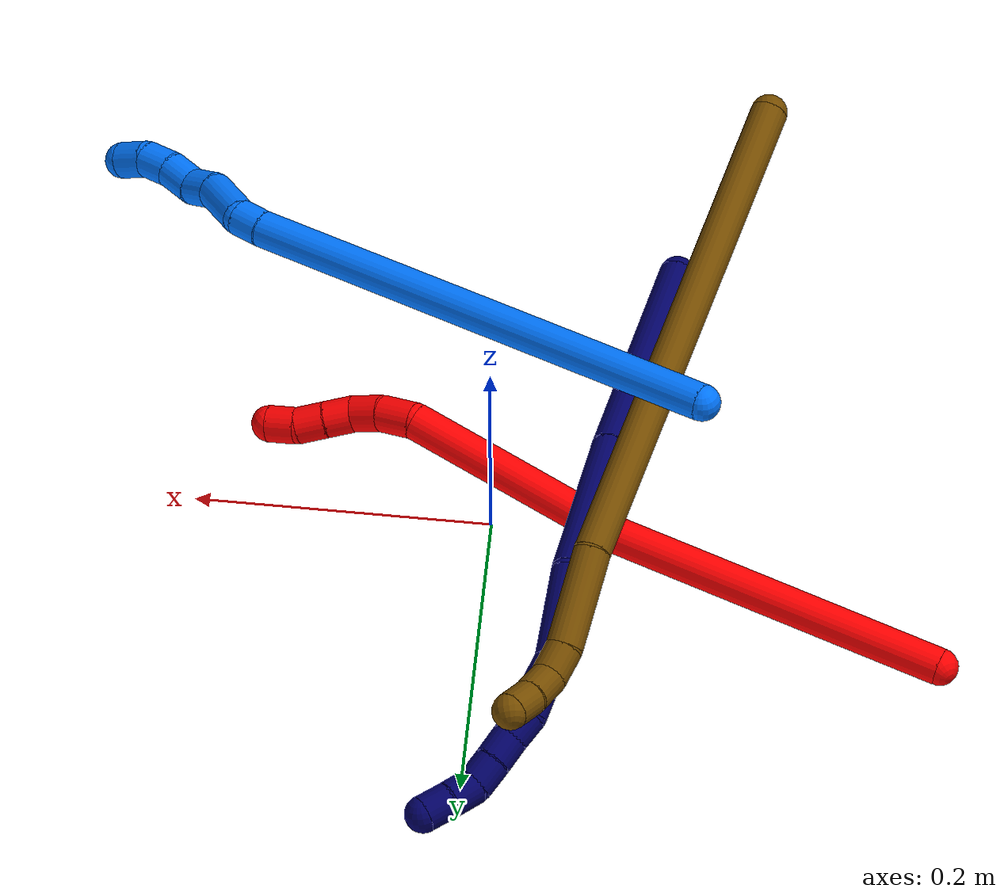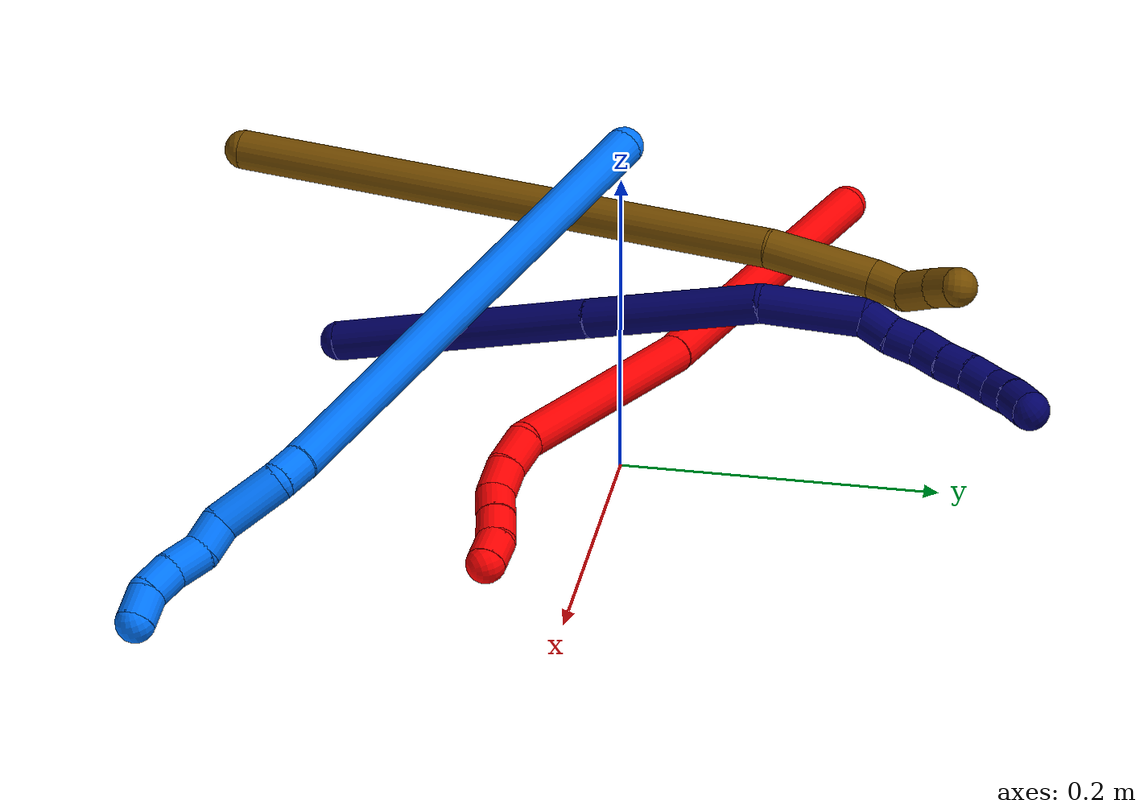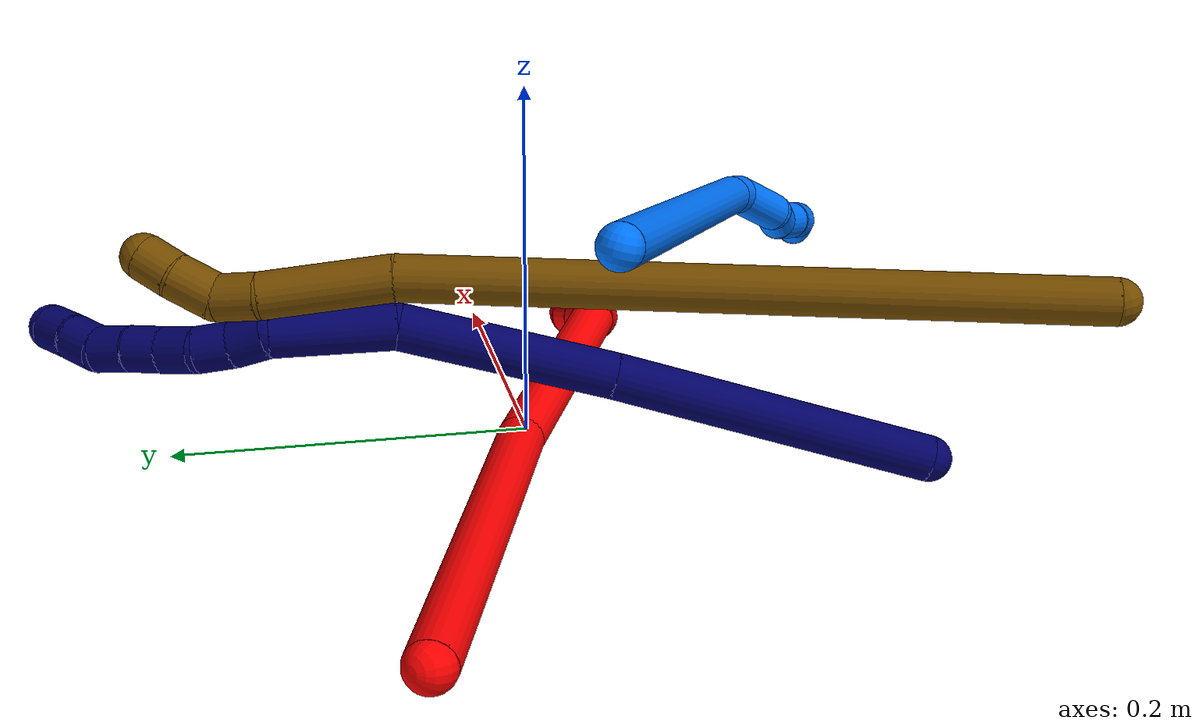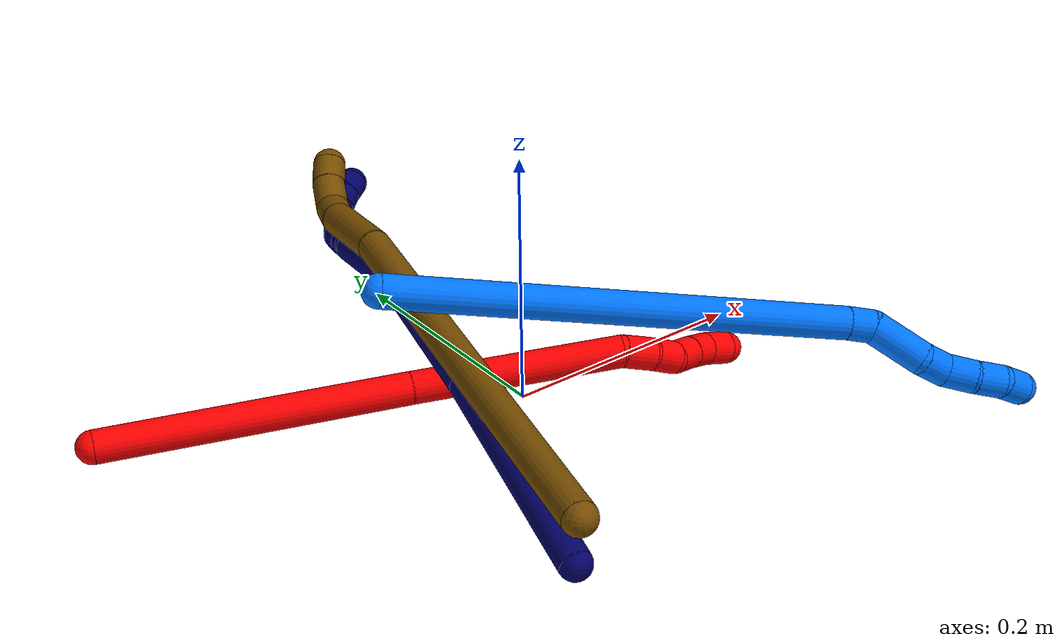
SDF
<sdf version="1.7">
 <world name="default">
  <model name="2">
   <static>0</static>
   <link name="2">
    <collision name="collision-cylinder-e_1_1_4">
     <pose>0.064358 -0.000493 -0.097035 3.13651 0.585625 3.12473</pose>
     <geometry><cylinder><radius>0.0125</radius><length>0.232877</length></cylinder></geometry>
     <surface>
      <friction><ode><mu>1.16</mu><mu2>1.16</mu2><slip1>0</slip1><slip2>0</slip2></ode></friction>
      <contact><ode><kp>1e+06</kp><kd>1</kd><max_vel>0</max_vel><min_depth>0.001</min_depth></ode></contact>
     </surface>
    </collision>
    <visual name="visual-cylinder-e_1_1_4">
     <pose>0.064358 -0.000493 -0.097035 3.13651 0.585625 3.12473</pose>
     <geometry><cylinder><radius>0.0125</radius><length>0.232877</length></cylinder></geometry>
     <material><ambient>1 0 0 1</ambient></material>
    </visual>
    <collision name="collision-cylinder-e_2_4_5">
     <pose>0.166416 -0.008139 -0.26428 3.04007 0.490627 2.74118</pose>
     <geometry><cylinder><radius>0.0125</radius><length>0.160025</length></cylinder></geometry>
     <surface>
      <friction><ode><mu>1.16</mu><mu2>1.16</mu2><slip1>0</slip1><slip2>0</slip2></ode></friction>
      <contact><ode><kp>1e+06</kp><kd>1</kd><max_vel>0</max_vel><min_depth>0.001</min_depth></ode></contact>
     </surface>
    </collision>
    <visual name="visual-cylinder-e_2_4_5">
     <pose>0.166416 -0.008139 -0.26428 3.04007 0.490627 2.74118</pose>
     <geometry><cylinder><radius>0.0125</radius><length>0.160025</length></cylinder></geometry>
     <material><ambient>1 0 0 1</ambient></material>
    </visual>
    <collision name="collision-cylinder-e_3_5_6">
     <pose>0.210035 -0.011639 -0.345047 -2.80855 0.487277 -1.95251</pose>
     <geometry><cylinder><radius>0.0125</radius><length>0.025285</length></cylinder></geometry>
     <surface>
      <friction><ode><mu>1.16</mu><mu2>1.16</mu2><slip1>0</slip1><slip2>0</slip2></ode></friction>
      <contact><ode><kp>1e+06</kp><kd>1</kd><max_vel>0</max_vel><min_depth>0.001</min_depth></ode></contact>
     </surface>
    </collision>
    <visual name="visual-cylinder-e_3_5_6">
     <pose>0.210035 -0.011639 -0.345047 -2.80855 0.487277 -1.95251</pose>
     <geometry><cylinder><radius>0.0125</radius><length>0.025285</length></cylinder></geometry>
     <material><ambient>1 0 0 1</ambient></material>
    </visual>
    <collision name="collision-cylinder-e_4_6_7">
     <pose>0.22175 -0.003165 -0.363404 -2.58779 0.563549 -1.58918</pose>
     <geometry><cylinder><radius>0.0125</radius><length>0.021695</length></cylinder></geometry>
     <surface>
      <friction><ode><mu>1.16</mu><mu2>1.16</mu2><slip1>0</slip1><slip2>0</slip2></ode></friction>
      <contact><ode><kp>1e+06</kp><kd>1</kd><max_vel>0</max_vel><min_depth>0.001</min_depth></ode></contact>
     </surface>
    </collision>
    <visual name="visual-cylinder-e_4_6_7">
     <pose>0.22175 -0.003165 -0.363404 -2.58779 0.563549 -1.58918</pose>
     <geometry><cylinder><radius>0.0125</radius><length>0.021695</length></cylinder></geometry>
     <material><ambient>1 0 0 1</ambient></material>
    </visual>
    <collision name="collision-cylinder-e_5_7_8">
     <pose>0.235775 0.005075 -0.375769 -2.4992 0.964901 -2.00966</pose>
     <geometry><cylinder><radius>0.0125</radius><length>0.020028</length></cylinder></geometry>
     <surface>
      <friction><ode><mu>1.16</mu><mu2>1.16</mu2><slip1>0</slip1><slip2>0</slip2></ode></friction>
      <contact><ode><kp>1e+06</kp><kd>1</kd><max_vel>0</max_vel><min_depth>0.001</min_depth></ode></contact>
     </surface>
    </collision>
    <visual name="visual-cylinder-e_5_7_8">
     <pose>0.235775 0.005075 -0.375769 -2.4992 0.964901 -2.00966</pose>
     <geometry><cylinder><radius>0.0125</radius><length>0.020028</length></cylinder></geometry>
     <material><ambient>1 0 0 1</ambient></material>
    </visual>
    <collision name="collision-cylinder-e_6_8_9">
     <pose>0.251866 0.012393 -0.385178 -2.46342 0.90145 -1.88199</pose>
     <geometry><cylinder><radius>0.0125</radius><length>0.020044</length></cylinder></geometry>
     <surface>
      <friction><ode><mu>1.16</mu><mu2>1.16</mu2><slip1>0</slip1><slip2>0</slip2></ode></friction>
      <contact><ode><kp>1e+06</kp><kd>1</kd><max_vel>0</max_vel><min_depth>0.001</min_depth></ode></contact>
     </surface>
    </collision>
    <visual name="visual-cylinder-e_6_8_9">
     <pose>0.251866 0.012393 -0.385178 -2.46342 0.90145 -1.88199</pose>
     <geometry><cylinder><radius>0.0125</radius><length>0.020044</length></cylinder></geometry>
     <material><ambient>1 0 0 1</ambient></material>
    </visual>
    <collision name="collision-cylinder-e_7_9_2">
     <pose>0.266015 0.01917 -0.397276 -2.76419 0.678316 -2.14927</pose>
     <geometry><cylinder><radius>0.0125</radius><length>0.020048</length></cylinder></geometry>
     <surface>
      <friction><ode><mu>1.16</mu><mu2>1.16</mu2><slip1>0</slip1><slip2>0</slip2></ode></friction>
      <contact><ode><kp>1e+06</kp><kd>1</kd><max_vel>0</max_vel><min_depth>0.001</min_depth></ode></contact>
     </surface>
    </collision>
    <visual name="visual-cylinder-e_7_9_2">
     <pose>0.266015 0.01917 -0.397276 -2.76419 0.678316 -2.14927</pose>
     <geometry><cylinder><radius>0.0125</radius><length>0.020048</length></cylinder></geometry>
     <material><ambient>1 0 0 1</ambient></material>
    </visual>
    <collision name="collision-sphere-2">
     <pose>0.272305 0.022046 -0.404531 0 -0 0</pose>
     <geometry><sphere><radius>0.0125</radius></sphere></geometry>
     <surface>
      <friction><ode><mu>1.16</mu><mu2>1.16</mu2><slip1>0</slip1><slip2>0</slip2></ode></friction>
      <contact><ode><kp>1e+06</kp><kd>1</kd><max_vel>0</max_vel><min_depth>0.001</min_depth></ode></contact>
     </surface>
    </collision>
    <visual name="visual-sphere-2">
     <pose>0.272305 0.022046 -0.404531 0 -0 0</pose>
     <geometry><sphere><radius>0.0125</radius></sphere></geometry>
     <material><ambient>1 0 0 1</ambient></material>
    </visual>
    <collision name="collision-sphere-9">
     <pose>0.259725 0.016294 -0.39002 0 -0 0</pose>
     <geometry><sphere><radius>0.0125</radius></sphere></geometry>
     <surface>
      <friction><ode><mu>1.16</mu><mu2>1.16</mu2><slip1>0</slip1><slip2>0</slip2></ode></friction>
      <contact><ode><kp>1e+06</kp><kd>1</kd><max_vel>0</max_vel><min_depth>0.001</min_depth></ode></contact>
     </surface>
    </collision>
    <visual name="visual-sphere-9">
     <pose>0.259725 0.016294 -0.39002 0 -0 0</pose>
     <geometry><sphere><radius>0.0125</radius></sphere></geometry>
     <material><ambient>1 0 0 1</ambient></material>
    </visual>
    <collision name="collision-sphere-4">
     <pose>0.128716 -0.000987 -0.194069 0 -0 0</pose>
     <geometry><sphere><radius>0.0125</radius></sphere></geometry>
     <surface>
      <friction><ode><mu>1.16</mu><mu2>1.16</mu2><slip1>0</slip1><slip2>0</slip2></ode></friction>
      <contact><ode><kp>1e+06</kp><kd>1</kd><max_vel>0</max_vel><min_depth>0.001</min_depth></ode></contact>
     </surface>
    </collision>
    <visual name="visual-sphere-4">
     <pose>0.128716 -0.000987 -0.194069 0 -0 0</pose>
     <geometry><sphere><radius>0.0125</radius></sphere></geometry>
     <material><ambient>1 0 0 1</ambient></material>
    </visual>
    <collision name="collision-sphere-1">
     <geometry><sphere><radius>0.0125</radius></sphere></geometry>
     <surface>
      <friction><ode><mu>1.16</mu><mu2>1.16</mu2><slip1>0</slip1><slip2>0</slip2></ode></friction>
      <contact><ode><kp>1e+06</kp><kd>1</kd><max_vel>0</max_vel><min_depth>0.001</min_depth></ode></contact>
     </surface>
    </collision>
    <visual name="visual-sphere-1">
     <geometry><sphere><radius>0.0125</radius></sphere></geometry>
     <material><ambient>1 0 0 1</ambient></material>
    </visual>
    <collision name="collision-sphere-8">
     <pose>0.244007 0.008492 -0.380335 0 -0 0</pose>
     <geometry><sphere><radius>0.0125</radius></sphere></geometry>
     <surface>
      <friction><ode><mu>1.16</mu><mu2>1.16</mu2><slip1>0</slip1><slip2>0</slip2></ode></friction>
      <contact><ode><kp>1e+06</kp><kd>1</kd><max_vel>0</max_vel><min_depth>0.001</min_depth></ode></contact>
     </surface>
    </collision>
    <visual name="visual-sphere-8">
     <pose>0.244007 0.008492 -0.380335 0 -0 0</pose>
     <geometry><sphere><radius>0.0125</radius></sphere></geometry>
     <material><ambient>1 0 0 1</ambient></material>
    </visual>
    <collision name="collision-sphere-5">
     <pose>0.204116 -0.015291 -0.33449 0 -0 0</pose>
     <geometry><sphere><radius>0.0125</radius></sphere></geometry>
     <surface>
      <friction><ode><mu>1.16</mu><mu2>1.16</mu2><slip1>0</slip1><slip2>0</slip2></ode></friction>
      <contact><ode><kp>1e+06</kp><kd>1</kd><max_vel>0</max_vel><min_depth>0.001</min_depth></ode></contact>
     </surface>
    </collision>
    <visual name="visual-sphere-5">
     <pose>0.204116 -0.015291 -0.33449 0 -0 0</pose>
     <geometry><sphere><radius>0.0125</radius></sphere></geometry>
     <material><ambient>1 0 0 1</ambient></material>
    </visual>
    <collision name="collision-sphere-6">
     <pose>0.215955 -0.007987 -0.355604 0 -0 0</pose>
     <geometry><sphere><radius>0.0125</radius></sphere></geometry>
     <surface>
      <friction><ode><mu>1.16</mu><mu2>1.16</mu2><slip1>0</slip1><slip2>0</slip2></ode></friction>
      <contact><ode><kp>1e+06</kp><kd>1</kd><max_vel>0</max_vel><min_depth>0.001</min_depth></ode></contact>
     </surface>
    </collision>
    <visual name="visual-sphere-6">
     <pose>0.215955 -0.007987 -0.355604 0 -0 0</pose>
     <geometry><sphere><radius>0.0125</radius></sphere></geometry>
     <material><ambient>1 0 0 1</ambient></material>
    </visual>
    <collision name="collision-sphere-7">
     <pose>0.227544 0.001658 -0.371203 0 -0 0</pose>
     <geometry><sphere><radius>0.0125</radius></sphere></geometry>
     <surface>
      <friction><ode><mu>1.16</mu><mu2>1.16</mu2><slip1>0</slip1><slip2>0</slip2></ode></friction>
      <contact><ode><kp>1e+06</kp><kd>1</kd><max_vel>0</max_vel><min_depth>0.001</min_depth></ode></contact>
     </surface>
    </collision>
    <visual name="visual-sphere-7">
     <pose>0.227544 0.001658 -0.371203 0 -0 0</pose>
     <geometry><sphere><radius>0.0125</radius></sphere></geometry>
     <material><ambient>1 0 0 1</ambient></material>
    </visual>
    <inertial>
     <pose>0.133686 -0.002092 -0.209415 0 -0 0</pose>
     <mass>0.5</mass>
     <inertia>
      <ixx>-0.001019</ixx>
      <ixy>0</ixy>
      <ixz>0</ixz>
      <iyy>0.001522</iyy>
      <iyz>0</iyz>
      <izz>-0.000755</izz>
     </inertia>
    </inertial>
   </link>
   <pose>-0.307984 0.094866 0.032293 -1.42741 -0.213587 0.637393</pose>
  </model>
  <model name="7">
   <static>0</static>
   <link name="7">
    <collision name="collision-cylinder-e_1_1_4">
     <pose>0.021059 0.084745 0.011224 -1.43912 0.241534 -0.211893</pose>
     <geometry><cylinder><radius>0.0125</radius><length>0.176082</length></cylinder></geometry>
     <surface>
      <friction><ode><mu>1.16</mu><mu2>1.16</mu2><slip1>0</slip1><slip2>0</slip2></ode></friction>
      <contact><ode><kp>1e+06</kp><kd>1</kd><max_vel>0</max_vel><min_depth>0.001</min_depth></ode></contact>
     </surface>
    </collision>
    <visual name="visual-cylinder-e_1_1_4">
     <pose>0.021059 0.084745 0.011224 -1.43912 0.241534 -0.211893</pose>
     <geometry><cylinder><radius>0.0125</radius><length>0.176082</length></cylinder></geometry>
     <material><ambient>0.003922 0 0.403922 1</ambient></material>
    </visual>
    <collision name="collision-cylinder-e_2_4_5">
     <pose>0.057793 0.225178 0.031734 -1.40555 0.27083 -0.229799</pose>
     <geometry><cylinder><radius>0.0125</radius><length>0.117184</length></cylinder></geometry>
     <surface>
      <friction><ode><mu>1.16</mu><mu2>1.16</mu2><slip1>0</slip1><slip2>0</slip2></ode></friction>
      <contact><ode><kp>1e+06</kp><kd>1</kd><max_vel>0</max_vel><min_depth>0.001</min_depth></ode></contact>
     </surface>
    </collision>
    <visual name="visual-cylinder-e_2_4_5">
     <pose>0.057793 0.225178 0.031734 -1.40555 0.27083 -0.229799</pose>
     <geometry><cylinder><radius>0.0125</radius><length>0.117184</length></cylinder></geometry>
     <material><ambient>0.003922 0 0.403922 1</ambient></material>
    </visual>
    <collision name="collision-cylinder-e_3_5_6">
     <pose>0.081191 0.309659 0.055363 -1.1087 0.235618 -0.14629</pose>
     <geometry><cylinder><radius>0.0125</radius><length>0.066164</length></cylinder></geometry>
     <surface>
      <friction><ode><mu>1.16</mu><mu2>1.16</mu2><slip1>0</slip1><slip2>0</slip2></ode></friction>
      <contact><ode><kp>1e+06</kp><kd>1</kd><max_vel>0</max_vel><min_depth>0.001</min_depth></ode></contact>
     </surface>
    </collision>
    <visual name="visual-cylinder-e_3_5_6">
     <pose>0.081191 0.309659 0.055363 -1.1087 0.235618 -0.14629</pose>
     <geometry><cylinder><radius>0.0125</radius><length>0.066164</length></cylinder></geometry>
     <material><ambient>0.003922 0 0.403922 1</ambient></material>
    </visual>
    <collision name="collision-cylinder-e_4_6_7">
     <pose>0.087053 0.346582 0.075708 -0.934641 -0.182016 0.092034</pose>
     <geometry><cylinder><radius>0.0125</radius><length>0.020553</length></cylinder></geometry>
     <surface>
      <friction><ode><mu>1.16</mu><mu2>1.16</mu2><slip1>0</slip1><slip2>0</slip2></ode></friction>
      <contact><ode><kp>1e+06</kp><kd>1</kd><max_vel>0</max_vel><min_depth>0.001</min_depth></ode></contact>
     </surface>
    </collision>
    <visual name="visual-cylinder-e_4_6_7">
     <pose>0.087053 0.346582 0.075708 -0.934641 -0.182016 0.092034</pose>
     <geometry><cylinder><radius>0.0125</radius><length>0.020553</length></cylinder></geometry>
     <material><ambient>0.003922 0 0.403922 1</ambient></material>
    </visual>
    <collision name="collision-cylinder-e_5_7_8">
     <pose>0.085024 0.363335 0.086783 -1.03923 -0.016906 0.009671</pose>
     <geometry><cylinder><radius>0.0125</radius><length>0.020008</length></cylinder></geometry>
     <surface>
      <friction><ode><mu>1.16</mu><mu2>1.16</mu2><slip1>0</slip1><slip2>0</slip2></ode></friction>
      <contact><ode><kp>1e+06</kp><kd>1</kd><max_vel>0</max_vel><min_depth>0.001</min_depth></ode></contact>
     </surface>
    </collision>
    <visual name="visual-cylinder-e_5_7_8">
     <pose>0.085024 0.363335 0.086783 -1.03923 -0.016906 0.009671</pose>
     <geometry><cylinder><radius>0.0125</radius><length>0.020008</length></cylinder></geometry>
     <material><ambient>0.003922 0 0.403922 1</ambient></material>
    </visual>
    <collision name="collision-cylinder-e_6_8_9">
     <pose>0.082183 0.380916 0.095413 -1.19256 -0.270331 0.184075</pose>
     <geometry><cylinder><radius>0.0125</radius><length>0.020007</length></cylinder></geometry>
     <surface>
      <friction><ode><mu>1.16</mu><mu2>1.16</mu2><slip1>0</slip1><slip2>0</slip2></ode></friction>
      <contact><ode><kp>1e+06</kp><kd>1</kd><max_vel>0</max_vel><min_depth>0.001</min_depth></ode></contact>
     </surface>
    </collision>
    <visual name="visual-cylinder-e_6_8_9">
     <pose>0.082183 0.380916 0.095413 -1.19256 -0.270331 0.184075</pose>
     <geometry><cylinder><radius>0.0125</radius><length>0.020007</length></cylinder></geometry>
     <material><ambient>0.003922 0 0.403922 1</ambient></material>
    </visual>
    <collision name="collision-cylinder-e_7_9_10">
     <pose>0.077743 0.399128 0.10233 -1.2228 -0.1778 0.124806</pose>
     <geometry><cylinder><radius>0.0125</radius><length>0.020002</length></cylinder></geometry>
     <surface>
      <friction><ode><mu>1.16</mu><mu2>1.16</mu2><slip1>0</slip1><slip2>0</slip2></ode></friction>
      <contact><ode><kp>1e+06</kp><kd>1</kd><max_vel>0</max_vel><min_depth>0.001</min_depth></ode></contact>
     </surface>
    </collision>
    <visual name="visual-cylinder-e_7_9_10">
     <pose>0.077743 0.399128 0.10233 -1.2228 -0.1778 0.124806</pose>
     <geometry><cylinder><radius>0.0125</radius><length>0.020002</length></cylinder></geometry>
     <material><ambient>0.003922 0 0.403922 1</ambient></material>
    </visual>
    <collision name="collision-cylinder-e_8_10_11">
     <pose>0.073455 0.417309 0.109422 -1.17446 -0.254626 0.169978</pose>
     <geometry><cylinder><radius>0.0125</radius><length>0.020001</length></cylinder></geometry>
     <surface>
      <friction><ode><mu>1.16</mu><mu2>1.16</mu2><slip1>0</slip1><slip2>0</slip2></ode></friction>
      <contact><ode><kp>1e+06</kp><kd>1</kd><max_vel>0</max_vel><min_depth>0.001</min_depth></ode></contact>
     </surface>
    </collision>
    <visual name="visual-cylinder-e_8_10_11">
     <pose>0.073455 0.417309 0.109422 -1.17446 -0.254626 0.169978</pose>
     <geometry><cylinder><radius>0.0125</radius><length>0.020001</length></cylinder></geometry>
     <material><ambient>0.003922 0 0.403922 1</ambient></material>
    </visual>
    <collision name="collision-cylinder-e_9_11_12">
     <pose>0.067027 0.435441 0.113186 -1.56784 -0.401641 0.400487</pose>
     <geometry><cylinder><radius>0.0125</radius><length>0.02</length></cylinder></geometry>
     <surface>
      <friction><ode><mu>1.16</mu><mu2>1.16</mu2><slip1>0</slip1><slip2>0</slip2></ode></friction>
      <contact><ode><kp>1e+06</kp><kd>1</kd><max_vel>0</max_vel><min_depth>0.001</min_depth></ode></contact>
     </surface>
    </collision>
    <visual name="visual-cylinder-e_9_11_12">
     <pose>0.067027 0.435441 0.113186 -1.56784 -0.401641 0.400487</pose>
     <geometry><cylinder><radius>0.0125</radius><length>0.02</length></cylinder></geometry>
     <material><ambient>0.003922 0 0.403922 1</ambient></material>
    </visual>
    <collision name="collision-cylinder-e_10_12_2">
     <pose>0.058235 0.453358 0.113707 -1.51416 -0.510068 0.483077</pose>
     <geometry><cylinder><radius>0.0125</radius><length>0.02</length></cylinder></geometry>
     <surface>
      <friction><ode><mu>1.16</mu><mu2>1.16</mu2><slip1>0</slip1><slip2>0</slip2></ode></friction>
      <contact><ode><kp>1e+06</kp><kd>1</kd><max_vel>0</max_vel><min_depth>0.001</min_depth></ode></contact>
     </surface>
    </collision>
    <visual name="visual-cylinder-e_10_12_2">
     <pose>0.058235 0.453358 0.113707 -1.51416 -0.510068 0.483077</pose>
     <geometry><cylinder><radius>0.0125</radius><length>0.02</length></cylinder></geometry>
     <material><ambient>0.003922 0 0.403922 1</ambient></material>
    </visual>
    <collision name="collision-sphere-2">
     <pose>0.053353 0.462071 0.114201 0 -0 0</pose>
     <geometry><sphere><radius>0.0125</radius></sphere></geometry>
     <surface>
      <friction><ode><mu>1.16</mu><mu2>1.16</mu2><slip1>0</slip1><slip2>0</slip2></ode></friction>
      <contact><ode><kp>1e+06</kp><kd>1</kd><max_vel>0</max_vel><min_depth>0.001</min_depth></ode></contact>
     </surface>
    </collision>
    <visual name="visual-sphere-2">
     <pose>0.053353 0.462071 0.114201 0 -0 0</pose>
     <geometry><sphere><radius>0.0125</radius></sphere></geometry>
     <material><ambient>0.003922 0 0.403922 1</ambient></material>
    </visual>
    <collision name="collision-sphere-12">
     <pose>0.063118 0.444645 0.113213 0 -0 0</pose>
     <geometry><sphere><radius>0.0125</radius></sphere></geometry>
     <surface>
      <friction><ode><mu>1.16</mu><mu2>1.16</mu2><slip1>0</slip1><slip2>0</slip2></ode></friction>
      <contact><ode><kp>1e+06</kp><kd>1</kd><max_vel>0</max_vel><min_depth>0.001</min_depth></ode></contact>
     </surface>
    </collision>
    <visual name="visual-sphere-12">
     <pose>0.063118 0.444645 0.113213 0 -0 0</pose>
     <geometry><sphere><radius>0.0125</radius></sphere></geometry>
     <material><ambient>0.003922 0 0.403922 1</ambient></material>
    </visual>
    <collision name="collision-sphere-11">
     <pose>0.070936 0.426236 0.113158 0 -0 0</pose>
     <geometry><sphere><radius>0.0125</radius></sphere></geometry>
     <surface>
      <friction><ode><mu>1.16</mu><mu2>1.16</mu2><slip1>0</slip1><slip2>0</slip2></ode></friction>
      <contact><ode><kp>1e+06</kp><kd>1</kd><max_vel>0</max_vel><min_depth>0.001</min_depth></ode></contact>
     </surface>
    </collision>
    <visual name="visual-sphere-11">
     <pose>0.070936 0.426236 0.113158 0 -0 0</pose>
     <geometry><sphere><radius>0.0125</radius></sphere></geometry>
     <material><ambient>0.003922 0 0.403922 1</ambient></material>
    </visual>
    <collision name="collision-sphere-10">
     <pose>0.075974 0.408381 0.105686 0 -0 0</pose>
     <geometry><sphere><radius>0.0125</radius></sphere></geometry>
     <surface>
      <friction><ode><mu>1.16</mu><mu2>1.16</mu2><slip1>0</slip1><slip2>0</slip2></ode></friction>
      <contact><ode><kp>1e+06</kp><kd>1</kd><max_vel>0</max_vel><min_depth>0.001</min_depth></ode></contact>
     </surface>
    </collision>
    <visual name="visual-sphere-10">
     <pose>0.075974 0.408381 0.105686 0 -0 0</pose>
     <geometry><sphere><radius>0.0125</radius></sphere></geometry>
     <material><ambient>0.003922 0 0.403922 1</ambient></material>
    </visual>
    <collision name="collision-sphere-9">
     <pose>0.079512 0.389874 0.098973 0 -0 0</pose>
     <geometry><sphere><radius>0.0125</radius></sphere></geometry>
     <surface>
      <friction><ode><mu>1.16</mu><mu2>1.16</mu2><slip1>0</slip1><slip2>0</slip2></ode></friction>
      <contact><ode><kp>1e+06</kp><kd>1</kd><max_vel>0</max_vel><min_depth>0.001</min_depth></ode></contact>
     </surface>
    </collision>
    <visual name="visual-sphere-9">
     <pose>0.079512 0.389874 0.098973 0 -0 0</pose>
     <geometry><sphere><radius>0.0125</radius></sphere></geometry>
     <material><ambient>0.003922 0 0.403922 1</ambient></material>
    </visual>
    <collision name="collision-sphere-4">
     <pose>0.042117 0.169491 0.022447 0 -0 0</pose>
     <geometry><sphere><radius>0.0125</radius></sphere></geometry>
     <surface>
      <friction><ode><mu>1.16</mu><mu2>1.16</mu2><slip1>0</slip1><slip2>0</slip2></ode></friction>
      <contact><ode><kp>1e+06</kp><kd>1</kd><max_vel>0</max_vel><min_depth>0.001</min_depth></ode></contact>
     </surface>
    </collision>
    <visual name="visual-sphere-4">
     <pose>0.042117 0.169491 0.022447 0 -0 0</pose>
     <geometry><sphere><radius>0.0125</radius></sphere></geometry>
     <material><ambient>0.003922 0 0.403922 1</ambient></material>
    </visual>
    <collision name="collision-sphere-1">
     <geometry><sphere><radius>0.0125</radius></sphere></geometry>
     <surface>
      <friction><ode><mu>1.16</mu><mu2>1.16</mu2><slip1>0</slip1><slip2>0</slip2></ode></friction>
      <contact><ode><kp>1e+06</kp><kd>1</kd><max_vel>0</max_vel><min_depth>0.001</min_depth></ode></contact>
     </surface>
    </collision>
    <visual name="visual-sphere-1">
     <geometry><sphere><radius>0.0125</radius></sphere></geometry>
     <material><ambient>0.003922 0 0.403922 1</ambient></material>
    </visual>
    <collision name="collision-sphere-8">
     <pose>0.084855 0.371957 0.091853 0 -0 0</pose>
     <geometry><sphere><radius>0.0125</radius></sphere></geometry>
     <surface>
      <friction><ode><mu>1.16</mu><mu2>1.16</mu2><slip1>0</slip1><slip2>0</slip2></ode></friction>
      <contact><ode><kp>1e+06</kp><kd>1</kd><max_vel>0</max_vel><min_depth>0.001</min_depth></ode></contact>
     </surface>
    </collision>
    <visual name="visual-sphere-8">
     <pose>0.084855 0.371957 0.091853 0 -0 0</pose>
     <geometry><sphere><radius>0.0125</radius></sphere></geometry>
     <material><ambient>0.003922 0 0.403922 1</ambient></material>
    </visual>
    <collision name="collision-sphere-5">
     <pose>0.073468 0.280865 0.041022 0 -0 0</pose>
     <geometry><sphere><radius>0.0125</radius></sphere></geometry>
     <surface>
      <friction><ode><mu>1.16</mu><mu2>1.16</mu2><slip1>0</slip1><slip2>0</slip2></ode></friction>
      <contact><ode><kp>1e+06</kp><kd>1</kd><max_vel>0</max_vel><min_depth>0.001</min_depth></ode></contact>
     </surface>
    </collision>
    <visual name="visual-sphere-5">
     <pose>0.073468 0.280865 0.041022 0 -0 0</pose>
     <geometry><sphere><radius>0.0125</radius></sphere></geometry>
     <material><ambient>0.003922 0 0.403922 1</ambient></material>
    </visual>
    <collision name="collision-sphere-6">
     <pose>0.088913 0.338453 0.069704 0 -0 0</pose>
     <geometry><sphere><radius>0.0125</radius></sphere></geometry>
     <surface>
      <friction><ode><mu>1.16</mu><mu2>1.16</mu2><slip1>0</slip1><slip2>0</slip2></ode></friction>
      <contact><ode><kp>1e+06</kp><kd>1</kd><max_vel>0</max_vel><min_depth>0.001</min_depth></ode></contact>
     </surface>
    </collision>
    <visual name="visual-sphere-6">
     <pose>0.088913 0.338453 0.069704 0 -0 0</pose>
     <geometry><sphere><radius>0.0125</radius></sphere></geometry>
     <material><ambient>0.003922 0 0.403922 1</ambient></material>
    </visual>
    <collision name="collision-sphere-7">
     <pose>0.085193 0.354712 0.081713 0 -0 0</pose>
     <geometry><sphere><radius>0.0125</radius></sphere></geometry>
     <surface>
      <friction><ode><mu>1.16</mu><mu2>1.16</mu2><slip1>0</slip1><slip2>0</slip2></ode></friction>
      <contact><ode><kp>1e+06</kp><kd>1</kd><max_vel>0</max_vel><min_depth>0.001</min_depth></ode></contact>
     </surface>
    </collision>
    <visual name="visual-sphere-7">
     <pose>0.085193 0.354712 0.081713 0 -0 0</pose>
     <geometry><sphere><radius>0.0125</radius></sphere></geometry>
     <material><ambient>0.003922 0 0.403922 1</ambient></material>
    </visual>
    <inertial>
     <pose>0.053033 0.235834 0.046665 0 -0 0</pose>
     <mass>0.5</mass>
     <inertia>
      <ixx>0.000481</ixx>
      <ixy>0</ixy>
      <ixz>0</ixz>
      <iyy>3.9e-05</iyy>
      <iyz>0</iyz>
      <izz>-0.000751</izz>
     </inertia>
    </inertial>
   </link>
   <pose>-0.107415 -0.20018 0.011497 2.80357 -0.393827 2.80742</pose>
  </model>
  <model name="12">
   <static>0</static>
   <link name="12">
    <collision name="collision-cylinder-e_1_1_4">
     <pose>0.061864 0.058882 -0.160001 -2.78897 0.348085 -1.55756</pose>
     <geometry><cylinder><radius>0.0125</radius><length>0.362736</length></cylinder></geometry>
     <surface>
      <friction><ode><mu>1.16</mu><mu2>1.16</mu2><slip1>0</slip1><slip2>0</slip2></ode></friction>
      <contact><ode><kp>1e+06</kp><kd>1</kd><max_vel>0</max_vel><min_depth>0.001</min_depth></ode></contact>
     </surface>
    </collision>
    <visual name="visual-cylinder-e_1_1_4">
     <pose>0.061864 0.058882 -0.160001 -2.78897 0.348085 -1.55756</pose>
     <geometry><cylinder><radius>0.0125</radius><length>0.362736</length></cylinder></geometry>
     <material><ambient>0.466667 0.301961 0 1</ambient></material>
    </visual>
    <collision name="collision-cylinder-e_2_4_5">
     <pose>0.135471 0.123458 -0.352263 -2.96688 0.344161 -2.20807</pose>
     <geometry><cylinder><radius>0.0125</radius><length>0.069603</length></cylinder></geometry>
     <surface>
      <friction><ode><mu>1.16</mu><mu2>1.16</mu2><slip1>0</slip1><slip2>0</slip2></ode></friction>
      <contact><ode><kp>1e+06</kp><kd>1</kd><max_vel>0</max_vel><min_depth>0.001</min_depth></ode></contact>
     </surface>
    </collision>
    <visual name="visual-cylinder-e_2_4_5">
     <pose>0.135471 0.123458 -0.352263 -2.96688 0.344161 -2.20807</pose>
     <geometry><cylinder><radius>0.0125</radius><length>0.069603</length></cylinder></geometry>
     <material><ambient>0.466667 0.301961 0 1</ambient></material>
    </visual>
    <collision name="collision-cylinder-e_3_5_6">
     <pose>0.152905 0.131916 -0.394005 -2.8579 0.52283 -2.16099</pose>
     <geometry><cylinder><radius>0.0125</radius><length>0.022796</length></cylinder></geometry>
     <surface>
      <friction><ode><mu>1.16</mu><mu2>1.16</mu2><slip1>0</slip1><slip2>0</slip2></ode></friction>
      <contact><ode><kp>1e+06</kp><kd>1</kd><max_vel>0</max_vel><min_depth>0.001</min_depth></ode></contact>
     </surface>
    </collision>
    <visual name="visual-cylinder-e_3_5_6">
     <pose>0.152905 0.131916 -0.394005 -2.8579 0.52283 -2.16099</pose>
     <geometry><cylinder><radius>0.0125</radius><length>0.022796</length></cylinder></geometry>
     <material><ambient>0.466667 0.301961 0 1</ambient></material>
    </visual>
    <collision name="collision-cylinder-e_4_6_7">
     <pose>0.162592 0.143225 -0.411455 -2.32137 0.329491 -0.730478</pose>
     <geometry><cylinder><radius>0.0125</radius><length>0.024698</length></cylinder></geometry>
     <surface>
      <friction><ode><mu>1.16</mu><mu2>1.16</mu2><slip1>0</slip1><slip2>0</slip2></ode></friction>
      <contact><ode><kp>1e+06</kp><kd>1</kd><max_vel>0</max_vel><min_depth>0.001</min_depth></ode></contact>
     </surface>
    </collision>
    <visual name="visual-cylinder-e_4_6_7">
     <pose>0.162592 0.143225 -0.411455 -2.32137 0.329491 -0.730478</pose>
     <geometry><cylinder><radius>0.0125</radius><length>0.024698</length></cylinder></geometry>
     <material><ambient>0.466667 0.301961 0 1</ambient></material>
    </visual>
    <collision name="collision-cylinder-e_5_7_2">
     <pose>0.17108 0.158963 -0.42488 -2.2197 0.461811 -0.88427</pose>
     <geometry><cylinder><radius>0.0125</radius><length>0.020167</length></cylinder></geometry>
     <surface>
      <friction><ode><mu>1.16</mu><mu2>1.16</mu2><slip1>0</slip1><slip2>0</slip2></ode></friction>
      <contact><ode><kp>1e+06</kp><kd>1</kd><max_vel>0</max_vel><min_depth>0.001</min_depth></ode></contact>
     </surface>
    </collision>
    <visual name="visual-cylinder-e_5_7_2">
     <pose>0.17108 0.158963 -0.42488 -2.2197 0.461811 -0.88427</pose>
     <geometry><cylinder><radius>0.0125</radius><length>0.020167</length></cylinder></geometry>
     <material><ambient>0.466667 0.301961 0 1</ambient></material>
    </visual>
    <collision name="collision-sphere-2">
     <pose>0.175573 0.166155 -0.430336 0 -0 0</pose>
     <geometry><sphere><radius>0.0125</radius></sphere></geometry>
     <surface>
      <friction><ode><mu>1.16</mu><mu2>1.16</mu2><slip1>0</slip1><slip2>0</slip2></ode></friction>
      <contact><ode><kp>1e+06</kp><kd>1</kd><max_vel>0</max_vel><min_depth>0.001</min_depth></ode></contact>
     </surface>
    </collision>
    <visual name="visual-sphere-2">
     <pose>0.175573 0.166155 -0.430336 0 -0 0</pose>
     <geometry><sphere><radius>0.0125</radius></sphere></geometry>
     <material><ambient>0.466667 0.301961 0 1</ambient></material>
    </visual>
    <collision name="collision-sphere-7">
     <pose>0.166587 0.15177 -0.419425 0 -0 0</pose>
     <geometry><sphere><radius>0.0125</radius></sphere></geometry>
     <surface>
      <friction><ode><mu>1.16</mu><mu2>1.16</mu2><slip1>0</slip1><slip2>0</slip2></ode></friction>
      <contact><ode><kp>1e+06</kp><kd>1</kd><max_vel>0</max_vel><min_depth>0.001</min_depth></ode></contact>
     </surface>
    </collision>
    <visual name="visual-sphere-7">
     <pose>0.166587 0.15177 -0.419425 0 -0 0</pose>
     <geometry><sphere><radius>0.0125</radius></sphere></geometry>
     <material><ambient>0.466667 0.301961 0 1</ambient></material>
    </visual>
    <collision name="collision-sphere-6">
     <pose>0.158596 0.13468 -0.403486 0 -0 0</pose>
     <geometry><sphere><radius>0.0125</radius></sphere></geometry>
     <surface>
      <friction><ode><mu>1.16</mu><mu2>1.16</mu2><slip1>0</slip1><slip2>0</slip2></ode></friction>
      <contact><ode><kp>1e+06</kp><kd>1</kd><max_vel>0</max_vel><min_depth>0.001</min_depth></ode></contact>
     </surface>
    </collision>
    <visual name="visual-sphere-6">
     <pose>0.158596 0.13468 -0.403486 0 -0 0</pose>
     <geometry><sphere><radius>0.0125</radius></sphere></geometry>
     <material><ambient>0.466667 0.301961 0 1</ambient></material>
    </visual>
    <collision name="collision-sphere-5">
     <pose>0.147213 0.129152 -0.384525 0 -0 0</pose>
     <geometry><sphere><radius>0.0125</radius></sphere></geometry>
     <surface>
      <friction><ode><mu>1.16</mu><mu2>1.16</mu2><slip1>0</slip1><slip2>0</slip2></ode></friction>
      <contact><ode><kp>1e+06</kp><kd>1</kd><max_vel>0</max_vel><min_depth>0.001</min_depth></ode></contact>
     </surface>
    </collision>
    <visual name="visual-sphere-5">
     <pose>0.147213 0.129152 -0.384525 0 -0 0</pose>
     <geometry><sphere><radius>0.0125</radius></sphere></geometry>
     <material><ambient>0.466667 0.301961 0 1</ambient></material>
    </visual>
    <collision name="collision-sphere-1">
     <geometry><sphere><radius>0.0125</radius></sphere></geometry>
     <surface>
      <friction><ode><mu>1.16</mu><mu2>1.16</mu2><slip1>0</slip1><slip2>0</slip2></ode></friction>
      <contact><ode><kp>1e+06</kp><kd>1</kd><max_vel>0</max_vel><min_depth>0.001</min_depth></ode></contact>
     </surface>
    </collision>
    <visual name="visual-sphere-1">
     <geometry><sphere><radius>0.0125</radius></sphere></geometry>
     <material><ambient>0.466667 0.301961 0 1</ambient></material>
    </visual>
    <collision name="collision-sphere-4">
     <pose>0.123729 0.117763 -0.320001 0 -0 0</pose>
     <geometry><sphere><radius>0.0125</radius></sphere></geometry>
     <surface>
      <friction><ode><mu>1.16</mu><mu2>1.16</mu2><slip1>0</slip1><slip2>0</slip2></ode></friction>
      <contact><ode><kp>1e+06</kp><kd>1</kd><max_vel>0</max_vel><min_depth>0.001</min_depth></ode></contact>
     </surface>
    </collision>
    <visual name="visual-sphere-4">
     <pose>0.123729 0.117763 -0.320001 0 -0 0</pose>
     <geometry><sphere><radius>0.0125</radius></sphere></geometry>
     <material><ambient>0.466667 0.301961 0 1</ambient></material>
    </visual>
    <inertial>
     <pose>0.085642 0.079404 -0.220538 0 -0 0</pose>
     <mass>0.5</mass>
     <inertia>
      <ixx>-0.003731</ixx>
      <ixy>0</ixy>
      <ixz>0</ixz>
      <iyy>-0.003326</iyy>
      <iyz>0</iyz>
      <izz>-0.002712</izz>
     </inertia>
    </inertial>
   </link>
   <pose>-0.161315 -0.271871 0.114445 1.39389 0.397432 0.14703</pose>
  </model>
  <model name="14">
   <static>0</static>
   <link name="14">
    <collision name="collision-cylinder-e_1_1_4">
     <pose>0.144131 -0.097972 -0.004647 1.6182 0.973274 1.01299</pose>
     <geometry><cylinder><radius>0.0125</radius><length>0.348677</length></cylinder></geometry>
     <surface>
      <friction><ode><mu>1.16</mu><mu2>1.16</mu2><slip1>0</slip1><slip2>0</slip2></ode></friction>
      <contact><ode><kp>1e+06</kp><kd>1</kd><max_vel>0</max_vel><min_depth>0.001</min_depth></ode></contact>
     </surface>
    </collision>
    <visual name="visual-cylinder-e_1_1_4">
     <pose>0.144131 -0.097972 -0.004647 1.6182 0.973274 1.01299</pose>
     <geometry><cylinder><radius>0.0125</radius><length>0.348677</length></cylinder></geometry>
     <material><ambient>0 0.462745 1 1</ambient></material>
    </visual>
    <collision name="collision-cylinder-e_2_4_5">
     <pose>0.296049 -0.202511 -0.009558 1.6108 0.869791 0.900766</pose>
     <geometry><cylinder><radius>0.0125</radius><length>0.020379</length></cylinder></geometry>
     <surface>
      <friction><ode><mu>1.16</mu><mu2>1.16</mu2><slip1>0</slip1><slip2>0</slip2></ode></friction>
      <contact><ode><kp>1e+06</kp><kd>1</kd><max_vel>0</max_vel><min_depth>0.001</min_depth></ode></contact>
     </surface>
    </collision>
    <visual name="visual-cylinder-e_2_4_5">
     <pose>0.296049 -0.202511 -0.009558 1.6108 0.869791 0.900766</pose>
     <geometry><cylinder><radius>0.0125</radius><length>0.020379</length></cylinder></geometry>
     <material><ambient>0 0.462745 1 1</ambient></material>
    </visual>
    <collision name="collision-cylinder-e_3_5_6">
     <pose>0.312571 -0.228229 -0.014699 1.82021 0.416178 0.530535</pose>
     <geometry><cylinder><radius>0.0125</radius><length>0.043214</length></cylinder></geometry>
     <surface>
      <friction><ode><mu>1.16</mu><mu2>1.16</mu2><slip1>0</slip1><slip2>0</slip2></ode></friction>
      <contact><ode><kp>1e+06</kp><kd>1</kd><max_vel>0</max_vel><min_depth>0.001</min_depth></ode></contact>
     </surface>
    </collision>
    <visual name="visual-cylinder-e_3_5_6">
     <pose>0.312571 -0.228229 -0.014699 1.82021 0.416178 0.530535</pose>
     <geometry><cylinder><radius>0.0125</radius><length>0.043214</length></cylinder></geometry>
     <material><ambient>0 0.462745 1 1</ambient></material>
    </visual>
    <collision name="collision-cylinder-e_4_6_7">
     <pose>0.328688 -0.253968 -0.023499 2.10779 0.766448 1.23377</pose>
     <geometry><cylinder><radius>0.0125</radius><length>0.021286</length></cylinder></geometry>
     <surface>
      <friction><ode><mu>1.16</mu><mu2>1.16</mu2><slip1>0</slip1><slip2>0</slip2></ode></friction>
      <contact><ode><kp>1e+06</kp><kd>1</kd><max_vel>0</max_vel><min_depth>0.001</min_depth></ode></contact>
     </surface>
    </collision>
    <visual name="visual-cylinder-e_4_6_7">
     <pose>0.328688 -0.253968 -0.023499 2.10779 0.766448 1.23377</pose>
     <geometry><cylinder><radius>0.0125</radius><length>0.021286</length></cylinder></geometry>
     <material><ambient>0 0.462745 1 1</ambient></material>
    </visual>
    <collision name="collision-cylinder-e_5_7_8">
     <pose>0.343708 -0.269727 -0.0274 1.56847 0.694424 0.692936</pose>
     <geometry><cylinder><radius>0.0125</radius><length>0.023871</length></cylinder></geometry>
     <surface>
      <friction><ode><mu>1.16</mu><mu2>1.16</mu2><slip1>0</slip1><slip2>0</slip2></ode></friction>
      <contact><ode><kp>1e+06</kp><kd>1</kd><max_vel>0</max_vel><min_depth>0.001</min_depth></ode></contact>
     </surface>
    </collision>
    <visual name="visual-cylinder-e_5_7_8">
     <pose>0.343708 -0.269727 -0.0274 1.56847 0.694424 0.692936</pose>
     <geometry><cylinder><radius>0.0125</radius><length>0.023871</length></cylinder></geometry>
     <material><ambient>0 0.462745 1 1</ambient></material>
    </visual>
    <collision name="collision-cylinder-e_6_8_9">
     <pose>0.359795 -0.285798 -0.028273 1.69976 0.881983 0.985857</pose>
     <geometry><cylinder><radius>0.0125</radius><length>0.021891</length></cylinder></geometry>
     <surface>
      <friction><ode><mu>1.16</mu><mu2>1.16</mu2><slip1>0</slip1><slip2>0</slip2></ode></friction>
      <contact><ode><kp>1e+06</kp><kd>1</kd><max_vel>0</max_vel><min_depth>0.001</min_depth></ode></contact>
     </surface>
    </collision>
    <visual name="visual-cylinder-e_6_8_9">
     <pose>0.359795 -0.285798 -0.028273 1.69976 0.881983 0.985857</pose>
     <geometry><cylinder><radius>0.0125</radius><length>0.021891</length></cylinder></geometry>
     <material><ambient>0 0.462745 1 1</ambient></material>
    </visual>
    <collision name="collision-cylinder-e_7_9_2">
     <pose>0.376772 -0.296945 -0.033192 2.32928 0.969354 1.77187</pose>
     <geometry><cylinder><radius>0.0125</radius><length>0.020682</length></cylinder></geometry>
     <surface>
      <friction><ode><mu>1.16</mu><mu2>1.16</mu2><slip1>0</slip1><slip2>0</slip2></ode></friction>
      <contact><ode><kp>1e+06</kp><kd>1</kd><max_vel>0</max_vel><min_depth>0.001</min_depth></ode></contact>
     </surface>
    </collision>
    <visual name="visual-cylinder-e_7_9_2">
     <pose>0.376772 -0.296945 -0.033192 2.32928 0.969354 1.77187</pose>
     <geometry><cylinder><radius>0.0125</radius><length>0.020682</length></cylinder></geometry>
     <material><ambient>0 0.462745 1 1</ambient></material>
    </visual>
    <collision name="collision-sphere-2">
     <pose>0.385298 -0.301192 -0.037217 0 -0 0</pose>
     <geometry><sphere><radius>0.0125</radius></sphere></geometry>
     <surface>
      <friction><ode><mu>1.16</mu><mu2>1.16</mu2><slip1>0</slip1><slip2>0</slip2></ode></friction>
      <contact><ode><kp>1e+06</kp><kd>1</kd><max_vel>0</max_vel><min_depth>0.001</min_depth></ode></contact>
     </surface>
    </collision>
    <visual name="visual-sphere-2">
     <pose>0.385298 -0.301192 -0.037217 0 -0 0</pose>
     <geometry><sphere><radius>0.0125</radius></sphere></geometry>
     <material><ambient>0 0.462745 1 1</ambient></material>
    </visual>
    <collision name="collision-sphere-9">
     <pose>0.368245 -0.292697 -0.029168 0 -0 0</pose>
     <geometry><sphere><radius>0.0125</radius></sphere></geometry>
     <surface>
      <friction><ode><mu>1.16</mu><mu2>1.16</mu2><slip1>0</slip1><slip2>0</slip2></ode></friction>
      <contact><ode><kp>1e+06</kp><kd>1</kd><max_vel>0</max_vel><min_depth>0.001</min_depth></ode></contact>
     </surface>
    </collision>
    <visual name="visual-sphere-9">
     <pose>0.368245 -0.292697 -0.029168 0 -0 0</pose>
     <geometry><sphere><radius>0.0125</radius></sphere></geometry>
     <material><ambient>0 0.462745 1 1</ambient></material>
    </visual>
    <collision name="collision-sphere-4">
     <pose>0.288262 -0.195944 -0.009295 0 -0 0</pose>
     <geometry><sphere><radius>0.0125</radius></sphere></geometry>
     <surface>
      <friction><ode><mu>1.16</mu><mu2>1.16</mu2><slip1>0</slip1><slip2>0</slip2></ode></friction>
      <contact><ode><kp>1e+06</kp><kd>1</kd><max_vel>0</max_vel><min_depth>0.001</min_depth></ode></contact>
     </surface>
    </collision>
    <visual name="visual-sphere-4">
     <pose>0.288262 -0.195944 -0.009295 0 -0 0</pose>
     <geometry><sphere><radius>0.0125</radius></sphere></geometry>
     <material><ambient>0 0.462745 1 1</ambient></material>
    </visual>
    <collision name="collision-sphere-1">
     <geometry><sphere><radius>0.0125</radius></sphere></geometry>
     <surface>
      <friction><ode><mu>1.16</mu><mu2>1.16</mu2><slip1>0</slip1><slip2>0</slip2></ode></friction>
      <contact><ode><kp>1e+06</kp><kd>1</kd><max_vel>0</max_vel><min_depth>0.001</min_depth></ode></contact>
     </surface>
    </collision>
    <visual name="visual-sphere-1">
     <geometry><sphere><radius>0.0125</radius></sphere></geometry>
     <material><ambient>0 0.462745 1 1</ambient></material>
    </visual>
    <collision name="collision-sphere-8">
     <pose>0.351346 -0.278899 -0.027378 0 -0 0</pose>
     <geometry><sphere><radius>0.0125</radius></sphere></geometry>
     <surface>
      <friction><ode><mu>1.16</mu><mu2>1.16</mu2><slip1>0</slip1><slip2>0</slip2></ode></friction>
      <contact><ode><kp>1e+06</kp><kd>1</kd><max_vel>0</max_vel><min_depth>0.001</min_depth></ode></contact>
     </surface>
    </collision>
    <visual name="visual-sphere-8">
     <pose>0.351346 -0.278899 -0.027378 0 -0 0</pose>
     <geometry><sphere><radius>0.0125</radius></sphere></geometry>
     <material><ambient>0 0.462745 1 1</ambient></material>
    </visual>
    <collision name="collision-sphere-5">
     <pose>0.303836 -0.209078 -0.009821 0 -0 0</pose>
     <geometry><sphere><radius>0.0125</radius></sphere></geometry>
     <surface>
      <friction><ode><mu>1.16</mu><mu2>1.16</mu2><slip1>0</slip1><slip2>0</slip2></ode></friction>
      <contact><ode><kp>1e+06</kp><kd>1</kd><max_vel>0</max_vel><min_depth>0.001</min_depth></ode></contact>
     </surface>
    </collision>
    <visual name="visual-sphere-5">
     <pose>0.303836 -0.209078 -0.009821 0 -0 0</pose>
     <geometry><sphere><radius>0.0125</radius></sphere></geometry>
     <material><ambient>0 0.462745 1 1</ambient></material>
    </visual>
    <collision name="collision-sphere-6">
     <pose>0.321306 -0.24738 -0.019577 0 -0 0</pose>
     <geometry><sphere><radius>0.0125</radius></sphere></geometry>
     <surface>
      <friction><ode><mu>1.16</mu><mu2>1.16</mu2><slip1>0</slip1><slip2>0</slip2></ode></friction>
      <contact><ode><kp>1e+06</kp><kd>1</kd><max_vel>0</max_vel><min_depth>0.001</min_depth></ode></contact>
     </surface>
    </collision>
    <visual name="visual-sphere-6">
     <pose>0.321306 -0.24738 -0.019577 0 -0 0</pose>
     <geometry><sphere><radius>0.0125</radius></sphere></geometry>
     <material><ambient>0 0.462745 1 1</ambient></material>
    </visual>
    <collision name="collision-sphere-7">
     <pose>0.33607 -0.260556 -0.027421 0 -0 0</pose>
     <geometry><sphere><radius>0.0125</radius></sphere></geometry>
     <surface>
      <friction><ode><mu>1.16</mu><mu2>1.16</mu2><slip1>0</slip1><slip2>0</slip2></ode></friction>
      <contact><ode><kp>1e+06</kp><kd>1</kd><max_vel>0</max_vel><min_depth>0.001</min_depth></ode></contact>
     </surface>
    </collision>
    <visual name="visual-sphere-7">
     <pose>0.33607 -0.260556 -0.027421 0 -0 0</pose>
     <geometry><sphere><radius>0.0125</radius></sphere></geometry>
     <material><ambient>0 0.462745 1 1</ambient></material>
    </visual>
    <inertial>
     <pose>0.201331 -0.144785 -0.00982 0 -0 0</pose>
     <mass>0.5</mass>
     <inertia>
      <ixx>0.002797</ixx>
      <ixy>0</ixy>
      <ixz>0</ixz>
      <iyy>0.004078</iyy>
      <iyz>0</iyz>
      <izz>-0.000939</izz>
     </inertia>
    </inertial>
   </link>
   <pose>-0.137562 -0.022192 0.151384 0.282564 0.025773 0.135643</pose>
  </model>
 </world>
</sdf>
